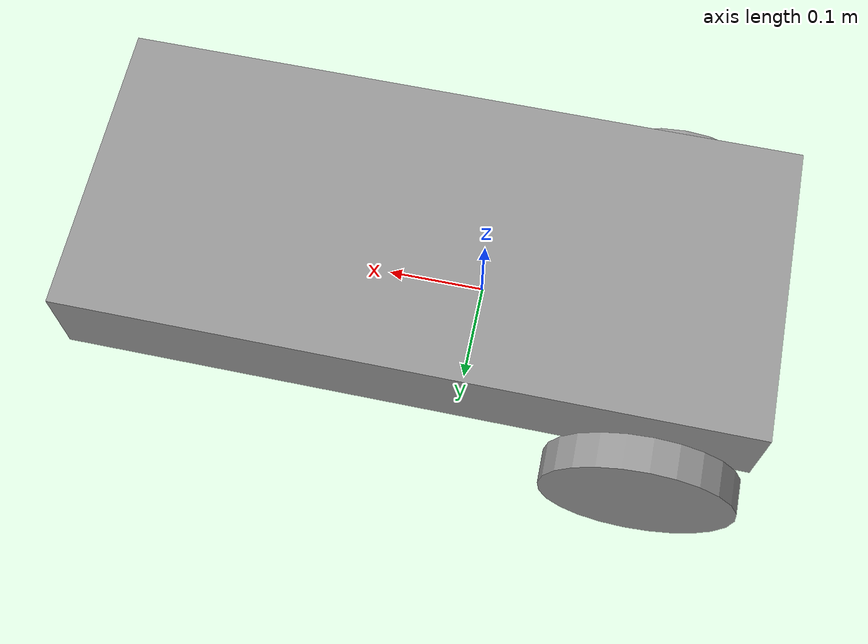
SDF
<?xml version='1.0'?>
<sdf version='1.6'>
  <model name='robot'>
    <link name='link_0'>
      <pose frame=''>0.052352 0.001088 0.082333 0 -0 0</pose>
      <inertial>
        <mass>0.0208388</mass>
        <inertia>
          <ixx>0.00018135</ixx>
          <ixy>0</ixy>
          <ixz>0</ixz>
          <iyy>0.00085991</iyy>
          <iyz>0</iyz>
          <izz>0.00100859</izz>
        </inertia>
        <pose frame=''>0 0 0 0 -0 0</pose>
      </inertial>
      <gravity>1</gravity>
      <self_collide>0</self_collide>
      <kinematic>0</kinematic>
      <visual name='visual'>
        <pose frame=''>0 0 0 0 -0 0</pose>
        <geometry>
          <box>
            <size>0.696972 0.308261 0.096977</size>
          </box>
        </geometry>
        <material>
          <lighting>1</lighting>
          <script>
            <uri>file://media/materials/scripts/gazebo.material</uri>
            <name>Gazebo/Grey</name>
          </script>
          <shader type='pixel'>
            <normal_map>__default__</normal_map>
          </shader>
          <ambient>0.3 0.3 0.3 1</ambient>
          <diffuse>0.7 0.7 0.7 1</diffuse>
          <specular>0.01 0.01 0.01 1</specular>
          <emissive>0 0 0 1</emissive>
        </material>
        <transparency>0</transparency>
        <cast_shadows>1</cast_shadows>
      </visual>
      <collision name='collision'>
        <laser_retro>0</laser_retro>
        <max_contacts>10</max_contacts>
        <pose frame=''>0 0 0 0 -0 0</pose>
        <geometry>
          <box>
            <size>0.696972 0.308261 0.096977</size>
          </box>
        </geometry>
        <surface>
          <friction>
            <ode>
              <mu>1</mu>
              <mu2>1</mu2>
              <fdir1>0 0 0</fdir1>
              <slip1>0</slip1>
              <slip2>0</slip2>
            </ode>
            <torsional>
              <coefficient>1</coefficient>
              <patch_radius>0</patch_radius>
              <surface_radius>0</surface_radius>
              <use_patch_radius>1</use_patch_radius>
              <ode>
                <slip>0</slip>
              </ode>
            </torsional>
          </friction>
          <bounce>
            <restitution_coefficient>0</restitution_coefficient>
            <threshold>1e+06</threshold>
          </bounce>
          <contact>
            <collide_without_contact>0</collide_without_contact>
            <collide_without_contact_bitmask>1</collide_without_contact_bitmask>
            <collide_bitmask>1</collide_bitmask>
            <ode>
              <soft_cfm>0</soft_cfm>
              <soft_erp>0.2</soft_erp>
              <kp>1e+13</kp>
              <kd>1</kd>
              <max_vel>0.01</max_vel>
              <min_depth>0</min_depth>
            </ode>
            <bullet>
              <split_impulse>1</split_impulse>
              <split_impulse_penetration_threshold>-0.01</split_impulse_penetration_threshold>
              <soft_cfm>0</soft_cfm>
              <soft_erp>0.2</soft_erp>
              <kp>1e+13</kp>
              <kd>1</kd>
            </bullet>
          </contact>
        </surface>
      </collision>
    </link>
    <link name='link_1'>
      <pose frame=''>-0.195425 0.1734 -0.018735 1.5707 -0 0</pose>
      <inertial>
        <mass>0.00146225</mass>
        <inertia>
          <ixx>3.88507e-06</ixx>
          <ixy>0</ixy>
          <ixz>0</ixz>
          <iyy>3.88507e-06</iyy>
          <iyz>0</iyz>
          <izz>7.45718e-06</izz>
        </inertia>
        <pose frame=''>0 0 0 0 -0 0</pose>
      </inertial>
      <gravity>1</gravity>
      <self_collide>0</self_collide>
      <kinematic>0</kinematic>
      <visual name='visual'>
        <pose frame=''>0 0 0 0 -0 0</pose>
        <geometry>
          <cylinder>
            <radius>0.100993</radius>
            <length>0.0358352</length>
          </cylinder>
        </geometry>
        <material>
          <lighting>1</lighting>
          <script>
            <uri>file://media/materials/scripts/gazebo.material</uri>
            <name>Gazebo/Grey</name>
          </script>
          <shader type='pixel'>
            <normal_map>__default__</normal_map>
          </shader>
          <ambient>0.3 0.3 0.3 1</ambient>
          <diffuse>0.7 0.7 0.7 1</diffuse>
          <specular>0.01 0.01 0.01 1</specular>
          <emissive>0 0 0 1</emissive>
        </material>
        <transparency>0</transparency>
        <cast_shadows>1</cast_shadows>
      </visual>
      <collision name='collision'>
        <laser_retro>0</laser_retro>
        <max_contacts>10</max_contacts>
        <pose frame=''>0 0 0 0 -0 0</pose>
        <geometry>
          <cylinder>
            <radius>0.100993</radius>
            <length>0.035835</length>
          </cylinder>
        </geometry>
        <surface>
          <friction>
            <ode>
              <mu>1</mu>
              <mu2>1</mu2>
              <fdir1>0 0 0</fdir1>
              <slip1>0</slip1>
              <slip2>0</slip2>
            </ode>
            <torsional>
              <coefficient>1</coefficient>
              <patch_radius>0</patch_radius>
              <surface_radius>0</surface_radius>
              <use_patch_radius>1</use_patch_radius>
              <ode>
                <slip>0</slip>
              </ode>
            </torsional>
          </friction>
          <bounce>
            <restitution_coefficient>0</restitution_coefficient>
            <threshold>1e+06</threshold>
          </bounce>
          <contact>
            <collide_without_contact>0</collide_without_contact>
            <collide_without_contact_bitmask>1</collide_without_contact_bitmask>
            <collide_bitmask>1</collide_bitmask>
            <ode>
              <soft_cfm>0</soft_cfm>
              <soft_erp>0.2</soft_erp>
              <kp>1e+13</kp>
              <kd>1</kd>
              <max_vel>0.01</max_vel>
              <min_depth>0</min_depth>
            </ode>
            <bullet>
              <split_impulse>1</split_impulse>
              <split_impulse_penetration_threshold>-0.01</split_impulse_penetration_threshold>
              <soft_cfm>0</soft_cfm>
              <soft_erp>0.2</soft_erp>
              <kp>1e+13</kp>
              <kd>1</kd>
            </bullet>
          </contact>
        </surface>
      </collision>
    </link>
    <link name='link_1_clone'>
      <pose frame=''>-0.181778 -0.173254 -0.02402 1.5707 -0 0</pose>
      <inertial>
        <mass>0.00146225</mass>
        <inertia>
          <ixx>3.88507e-06</ixx>
          <ixy>0</ixy>
          <ixz>0</ixz>
          <iyy>3.88507e-06</iyy>
          <iyz>0</iyz>
          <izz>7.45718e-06</izz>
        </inertia>
        <pose frame=''>0 0 0 0 -0 0</pose>
      </inertial>
      <self_collide>0</self_collide>
      <kinematic>0</kinematic>
      <visual name='visual'>
        <pose frame=''>0 0 0 0 -0 0</pose>
        <geometry>
          <cylinder>
            <radius>0.100993</radius>
            <length>0.0358352</length>
          </cylinder>
        </geometry>
        <material>
          <lighting>1</lighting>
          <script>
            <uri>file://media/materials/scripts/gazebo.material</uri>
            <name>Gazebo/Grey</name>
          </script>
          <shader type='pixel'>
            <normal_map>__default__</normal_map>
          </shader>
          <ambient>0.3 0.3 0.3 1</ambient>
          <diffuse>0.7 0.7 0.7 1</diffuse>
          <specular>0.01 0.01 0.01 1</specular>
          <emissive>0 0 0 1</emissive>
        </material>
        <transparency>0</transparency>
        <cast_shadows>1</cast_shadows>
      </visual>
      <collision name='collision'>
        <laser_retro>0</laser_retro>
        <max_contacts>10</max_contacts>
        <pose frame=''>0 0 0 0 -0 0</pose>
        <geometry>
          <cylinder>
            <radius>0.100993</radius>
            <length>0.035835</length>
          </cylinder>
        </geometry>
        <surface>
          <friction>
            <ode>
              <mu>1</mu>
              <mu2>1</mu2>
              <fdir1>0 0 0</fdir1>
              <slip1>0</slip1>
              <slip2>0</slip2>
            </ode>
            <torsional>
              <coefficient>1</coefficient>
              <patch_radius>0</patch_radius>
              <surface_radius>0</surface_radius>
              <use_patch_radius>1</use_patch_radius>
              <ode>
                <slip>0</slip>
              </ode>
            </torsional>
          </friction>
          <bounce>
            <restitution_coefficient>0</restitution_coefficient>
            <threshold>1e+06</threshold>
          </bounce>
          <contact>
            <collide_without_contact>0</collide_without_contact>
            <collide_without_contact_bitmask>1</collide_without_contact_bitmask>
            <collide_bitmask>1</collide_bitmask>
            <ode>
              <soft_cfm>0</soft_cfm>
              <soft_erp>0.2</soft_erp>
              <kp>1e+13</kp>
              <kd>1</kd>
              <max_vel>0.01</max_vel>
              <min_depth>0</min_depth>
            </ode>
            <bullet>
              <split_impulse>1</split_impulse>
              <split_impulse_penetration_threshold>-0.01</split_impulse_penetration_threshold>
              <soft_cfm>0</soft_cfm>
              <soft_erp>0.2</soft_erp>
              <kp>1e+13</kp>
              <kd>1</kd>
            </bullet>
          </contact>
        </surface>
      </collision>
    </link>
    <link name='link_2'>
      <pose frame=''>0.324853 -0.001234 -0.039578 0 -0 0</pose>
      <inertial>
        <mass>0.00372272</mass>
        <inertia>
          <ixx>8.93954e-06</ixx>
          <ixy>0</ixy>
          <ixz>0</ixz>
          <iyy>8.93954e-06</iyy>
          <iyz>0</iyz>
          <izz>8.93954e-06</izz>
        </inertia>
        <pose frame=''>0 0 0 0 -0 0</pose>
      </inertial>
      <visual name='visual'>
        <pose frame=''>0 0 0 0 -0 0</pose>
        <geometry>
          <sphere>
            <radius>0.0774814</radius>
          </sphere>
        </geometry>
        <material>
          <lighting>1</lighting>
          <script>
            <uri>file://media/materials/scripts/gazebo.material</uri>
            <name>Gazebo/Grey</name>
          </script>
          <shader type='pixel'/>
          <ambient>0.3 0.3 0.3 1</ambient>
          <diffuse>0.7 0.7 0.7 1</diffuse>
          <specular>0.01 0.01 0.01 1</specular>
          <emissive>0 0 0 1</emissive>
        </material>
        <transparency>0</transparency>
        <cast_shadows>1</cast_shadows>
      </visual>
      <collision name='collision'>
        <laser_retro>0</laser_retro>
        <max_contacts>10</max_contacts>
        <pose frame=''>0 0 0 0 -0 0</pose>
        <geometry>
          <sphere>
            <radius>0.077481</radius>
          </sphere>
        </geometry>
        <surface>
          <friction>
            <ode>
              <mu>1</mu>
              <mu2>1</mu2>
              <fdir1>0 0 0</fdir1>
              <slip1>0</slip1>
              <slip2>0</slip2>
            </ode>
            <torsional>
              <coefficient>1</coefficient>
              <patch_radius>0</patch_radius>
              <surface_radius>0</surface_radius>
              <use_patch_radius>1</use_patch_radius>
              <ode>
                <slip>0</slip>
              </ode>
            </torsional>
          </friction>
          <bounce>
            <restitution_coefficient>0</restitution_coefficient>
            <threshold>1e+06</threshold>
          </bounce>
          <contact>
            <collide_without_contact>0</collide_without_contact>
            <collide_without_contact_bitmask>1</collide_without_contact_bitmask>
            <collide_bitmask>1</collide_bitmask>
            <ode>
              <soft_cfm>0</soft_cfm>
              <soft_erp>0.2</soft_erp>
              <kp>1e+13</kp>
              <kd>1</kd>
              <max_vel>0.01</max_vel>
              <min_depth>0</min_depth>
            </ode>
            <bullet>
              <split_impulse>1</split_impulse>
              <split_impulse_penetration_threshold>-0.01</split_impulse_penetration_threshold>
              <soft_cfm>0</soft_cfm>
              <soft_erp>0.2</soft_erp>
              <kp>1e+13</kp>
              <kd>1</kd>
            </bullet>
          </contact>
        </surface>
      </collision>
    </link>
    <joint name='link_0_JOINT_0' type='revolute'>
      <parent>link_0</parent>
      <child>link_1</child>
      <pose frame=''>0 0 0 0 -0 0</pose>
      <axis>
        <xyz>0 0 1</xyz>
        <use_parent_model_frame>0</use_parent_model_frame>
        <limit>
          <lower>-1.79769e+308</lower>
          <upper>1.79769e+308</upper>
          <effort>-1</effort>
          <velocity>-1</velocity>
        </limit>
        <dynamics>
          <spring_reference>0</spring_reference>
          <spring_stiffness>0</spring_stiffness>
          <damping>0</damping>
        </dynamics>
      </axis>
      <physics>
        <ode>
          <limit>
            <cfm>0</cfm>
            <erp>0.2</erp>
          </limit>
          <suspension>
            <cfm>0</cfm>
            <erp>0.2</erp>
          </suspension>
        </ode>
      </physics>
    </joint>
    <joint name='link_0_JOINT_2' type='revolute'>
      <parent>link_0</parent>
      <child>link_1_clone</child>
      <pose frame=''>0 0 0 0 -0 0</pose>
      <axis>
        <xyz>0 0 1</xyz>
        <use_parent_model_frame>0</use_parent_model_frame>
        <limit>
          <lower>-1.79769e+308</lower>
          <upper>1.79769e+308</upper>
          <effort>-1</effort>
          <velocity>-1</velocity>
        </limit>
        <dynamics>
          <spring_reference>0</spring_reference>
          <spring_stiffness>0</spring_stiffness>
          <damping>0</damping>
        </dynamics>
      </axis>
      <physics>
        <ode>
          <limit>
            <cfm>0</cfm>
            <erp>0.2</erp>
          </limit>
          <suspension>
            <cfm>0</cfm>
            <erp>0.2</erp>
          </suspension>
        </ode>
      </physics>
    </joint>
    <static>0</static>
    <allow_auto_disable>1</allow_auto_disable>
  </model>
</sdf>
